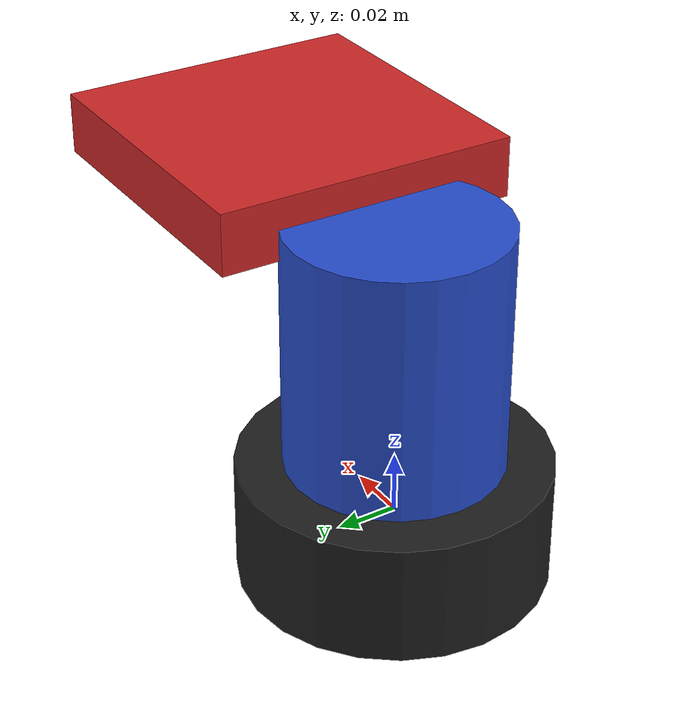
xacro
<?xml version="1.0" encoding="UTF-8"?>
<robot xmlns:xacro="http://wiki.ros.org/xacro" name="fractal_pad">

  <!-- Use this if parameters are set from the launch file, otherwise delete -->
  <xacro:arg name="prefix" default="" />

  <xacro:arg name="serial_device" default="/dev/ttyUSB0" />

  <xacro:arg name="use_mock_hardware" default="false" />
  <xacro:arg name="mock_sensor_commands" default="false" />
  <xacro:arg name="sim_gazebo_classic" default="false" />
  <xacro:arg name="sim_gazebo" default="false" />
  <xacro:arg name="simulation_controllers" default="" />

  <xacro:include filename="$(find fractal_pad_description)/urdf/fractal_pad/fractal_pad_macro.xacro"/>
  <xacro:include filename="$(find fractal_pad_description)/urdf/fractal_pad/fractal_pad_macro.ros2_control.xacro"/>

  <!-- create link fixed to the "world" -->
  <link name="world" />

  <!-- Load robot's macro with parameters -->
  <!-- set prefix if multiple robots are used -->
  <xacro:fractal_pad prefix="$(arg prefix)" parent="world" >
    <origin xyz="0 0 0" rpy="0 0 0" />          <!-- position robot in the world -->
  </xacro:fractal_pad>

  <xacro:fractal_pad_ros2_control
    name="fractal_pad"
    prefix="$(arg prefix)"
    use_mock_hardware="$(arg use_mock_hardware)"
    mock_sensor_commands="$(arg mock_sensor_commands)"
    sim_gazebo_classic="$(arg sim_gazebo_classic)"
    sim_gazebo="$(arg sim_gazebo)"
    simulation_controllers="$(arg simulation_controllers)" />

</robot>

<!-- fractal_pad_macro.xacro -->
<robot xmlns:xacro="http://wiki.ros.org/xacro">
  <xacro:include filename="$(find fractal_pad_description)/urdf/common/inertials.xacro" />
  <xacro:include filename="$(find fractal_pad_description)/urdf/common/materials.xacro" />

  <xacro:macro name="fractal_pad" params="prefix parent *origin">
    <!-- Approximate geometry only; replace with measured CAD when available. -->
    <link name="${prefix}base_link">
      <xacro:default_inertial/>
      <visual>
        <geometry><cylinder length="0.04" radius="0.05"/></geometry>
        <material name="black"/>
      </visual>
      <collision><geometry><cylinder length="0.04" radius="0.05"/></geometry></collision>
    </link>
    <link name="${prefix}motor_link">
      <xacro:default_inertial/>
      <visual>
        <origin xyz="0 0 0.04"/>
        <geometry><cylinder length="0.08" radius="0.035"/></geometry>
        <material name="blue"/>
      </visual>
      <collision><origin xyz="0 0 0.04"/><geometry><cylinder length="0.08" radius="0.035"/></geometry></collision>
    </link>
    <link name="${prefix}pad_link">
      <xacro:default_inertial/>
      <visual>
        <origin xyz="0.065 0 0.08"/>
        <geometry><box size="0.10 0.10 0.02"/></geometry>
        <material name="red"/>
      </visual>
      <collision><origin xyz="0.065 0 0.08"/><geometry><box size="0.10 0.10 0.02"/></geometry></collision>
    </link>
    <link name="${prefix}tool0"/>

    <joint name="${prefix}base_joint" type="fixed">
      <xacro:insert_block name="origin"/>
      <parent link="${parent}"/>
      <child link="${prefix}base_link"/>
    </joint>
    <joint name="${prefix}motor_joint" type="continuous">
      <origin xyz="0 0 0.02"/>
      <parent link="${prefix}base_link"/>
      <child link="${prefix}motor_link"/>
      <axis xyz="0 0 1"/>
      <limit effort="0" velocity="50"/>
    </joint>
    <joint name="${prefix}motor-pad_joint" type="fixed">
      <parent link="${prefix}motor_link"/>
      <child link="${prefix}pad_link"/>
    </joint>
    <joint name="${prefix}pad-tool0_joint" type="fixed">
      <origin xyz="0.115 0 0.08"/>
      <parent link="${prefix}motor_link"/>
      <child link="${prefix}tool0"/>
    </joint>
  </xacro:macro>
</robot>
